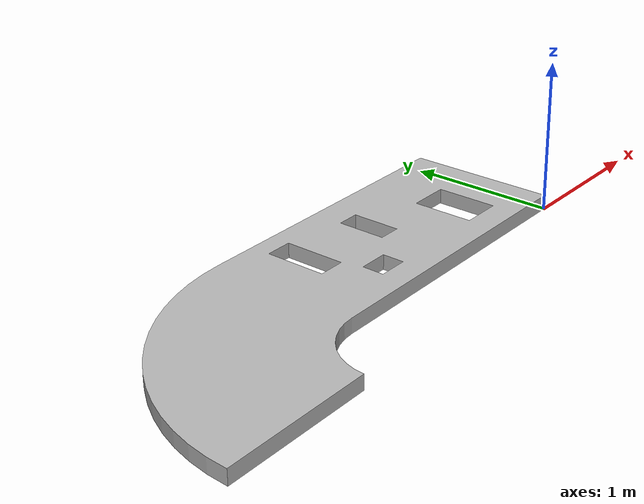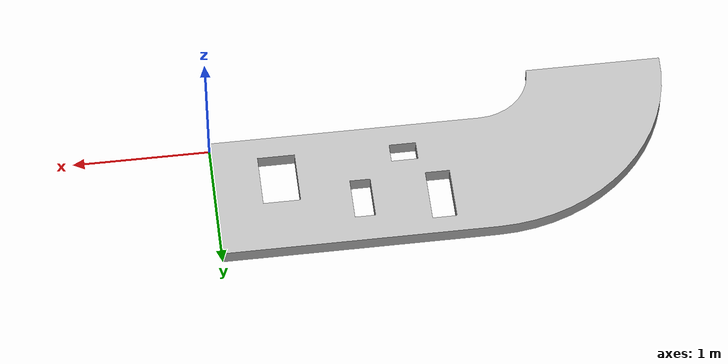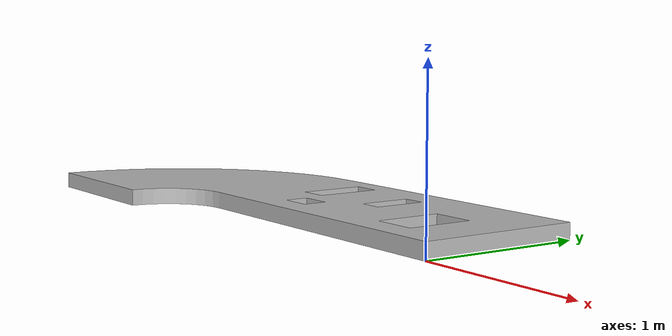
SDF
<?xml version="1.0" ?>
<sdf version="1.4">
<model name="challenge_hole_terrain">
<static>true</static>
<link name="link">
<pose>0 0 0 0 0 0</pose>
<collision name="collision"> <geometry> <mesh> <uri>model://challenge_hole_terrain/mesh/hole_terrain.STL</uri> <scale>0.001 0.001 0.001</scale> </mesh> </geometry> </collision>
<visual name="visual">       <geometry> <mesh> <uri>model://challenge_hole_terrain/mesh/hole_terrain.STL</uri> <scale>0.001 0.001 0.001</scale> </mesh> </geometry> </visual>
</link>
</model>
</sdf>
